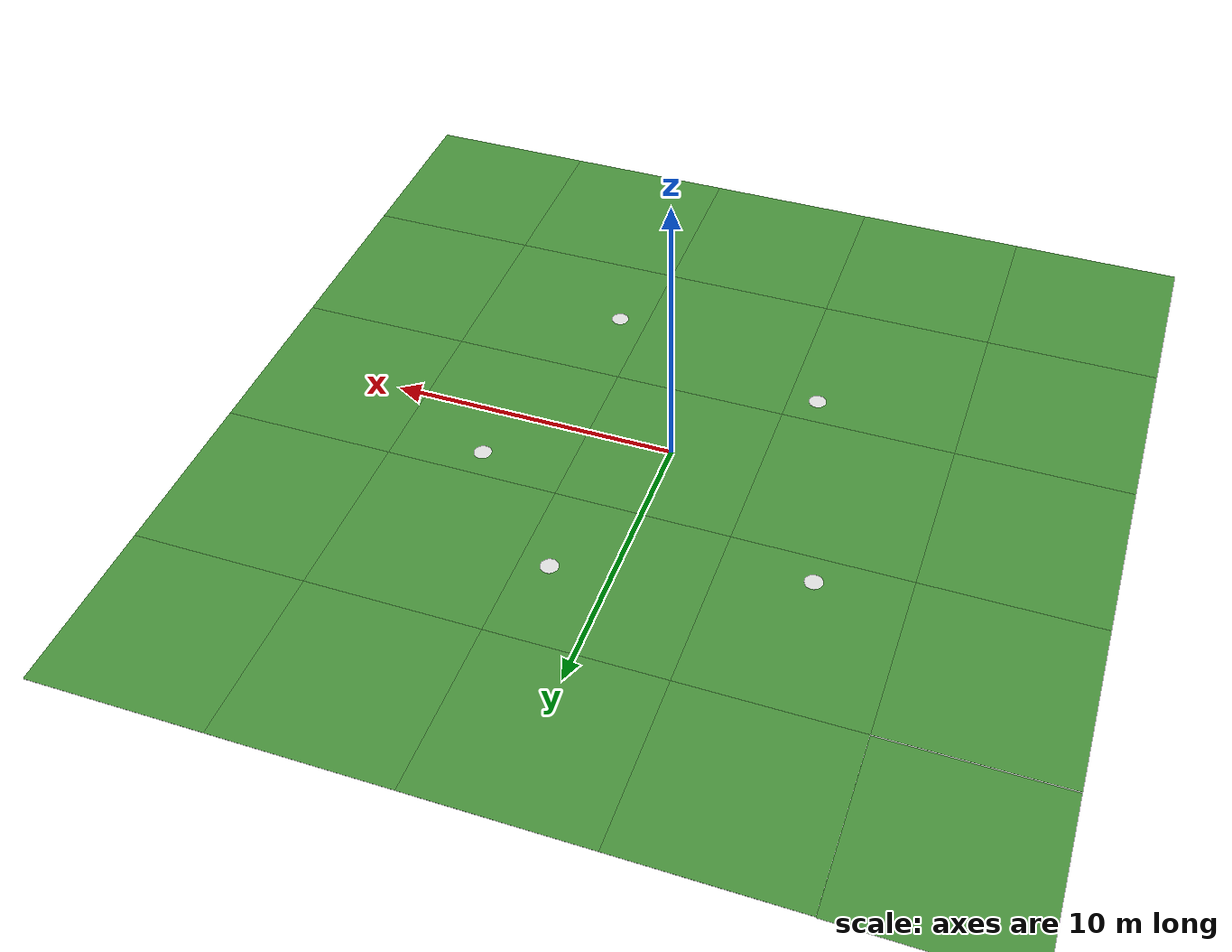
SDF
<?xml version="1.0"?>

<sdf version="1.6">
	<world name="default">
		<include>
			<uri>model://sun</uri>
			<pose>0 0 250  0 0 0</pose>
		</include>

		<include>
			<uri>model://grass_plane</uri>
		</include>

		<include>
			<uri>model://pothole</uri>
			<name>pothole0</name>
			<pose>-4 -4 0  0 0 0</pose>

		</include>

		<include>
			<uri>model://pothole</uri>
			<name>pothole1</name>
			<pose>6 2 0  0 0 0</pose>
		</include>

		<include>
			<uri>model://pothole</uri>
			<name>pothole2</name>
			<pose>2 6 0  0 0 0</pose>
		</include>

		<include>
			<uri>model://pothole</uri>
			<name>pothole3</name>
			<pose>-6 4 0  0 0 0</pose>
		</include>

		<include>
			<uri>model://pothole</uri>
			<name>pothole4</name>
			<pose>4 -6 0  0 0 0</pose>
		</include>

	</world>
</sdf>

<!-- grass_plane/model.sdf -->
<sdf version='1.4'>
	<model name='grass_plane'>
		<static>true</static>
		<link name='link'>
			<collision name='collision'>
				<geometry>
					<plane>
						<normal>0 0 1</normal>
						<size>30 30</size>
					</plane>
				</geometry>
				<surface>
					<friction>
						<ode>
							<mu>0.5</mu>
							<mu2>.5</mu2>
						</ode>
					</friction>
				</surface>
			</collision>

			<visual name='visual00'>
				<pose>-12 12 0 0 0 0</pose>

				<cast_shadows>false</cast_shadows>
				<geometry>
					<plane>
						<normal>0 0 1</normal>
						<size>6 6</size>
					</plane>
				</geometry>
				<material>
					<script>
						<uri>model://grass_plane/materials/scripts</uri>
						<uri>model://grass_plane/materials/textures</uri>
						<name>vrc/grass</name>
					</script>
				</material>
			</visual>

			<visual name='visual01'>
				<pose>-6 12 0 0 0 0</pose>

				<cast_shadows>false</cast_shadows>
				<geometry>
					<plane>
						<normal>0 0 1</normal>
						<size>6 6</size>
					</plane>
				</geometry>
				<material>
					<script>
						<uri>model://grass_plane/materials/scripts</uri>
						<uri>model://grass_plane/materials/textures</uri>
						<name>vrc/grass</name>
					</script>
				</material>
			</visual>

			<visual name='visual02'>
				<pose>0 12 0 0 0 0</pose>

				<cast_shadows>false</cast_shadows>
				<geometry>
					<plane>
						<normal>0 0 1</normal>
						<size>6 6</size>
					</plane>
				</geometry>
				<material>
					<script>
						<uri>model://grass_plane/materials/scripts</uri>
						<uri>model://grass_plane/materials/textures</uri>
						<name>vrc/grass</name>
					</script>
				</material>
			</visual>

			<visual name='visual03'>
				<pose>6 12 0 0 0 0</pose>

				<cast_shadows>false</cast_shadows>
				<geometry>
					<plane>
						<normal>0 0 1</normal>
						<size>6 6</size>
					</plane>
				</geometry>
				<material>
					<script>
						<uri>model://grass_plane/materials/scripts</uri>
						<uri>model://grass_plane/materials/textures</uri>
						<name>vrc/grass</name>
					</script>
				</material>
			</visual>

			<visual name='visual04'>
				<pose>12 12 0 0 0 0</pose>

				<cast_shadows>false</cast_shadows>
				<geometry>
					<plane>
						<normal>0 0 1</normal>
						<size>6 6</size>
					</plane>
				</geometry>
				<material>
					<script>
						<uri>model://grass_plane/materials/scripts</uri>
						<uri>model://grass_plane/materials/textures</uri>
						<name>vrc/grass</name>
					</script>
				</material>
			</visual>

			<visual name='visual10'>
				<pose>-12 6 0 0 0 0</pose>

				<cast_shadows>false</cast_shadows>
				<geometry>
					<plane>
						<normal>0 0 1</normal>
						<size>6 6</size>
					</plane>
				</geometry>
				<material>
					<script>
						<uri>model://grass_plane/materials/scripts</uri>
						<uri>model://grass_plane/materials/textures</uri>
						<name>vrc/grass</name>
					</script>
				</material>
			</visual>

			<visual name='visual11'>
				<pose>-6 6 0 0 0 0</pose>

				<cast_shadows>false</cast_shadows>
				<geometry>
					<plane>
						<normal>0 0 1</normal>
						<size>6 6</size>
					</plane>
				</geometry>
				<material>
					<script>
						<uri>model://grass_plane/materials/scripts</uri>
						<uri>model://grass_plane/materials/textures</uri>
						<name>vrc/grass</name>
					</script>
				</material>
			</visual>

			<visual name='visual12'>
				<pose>0 6 0 0 0 0</pose>

				<cast_shadows>false</cast_shadows>
				<geometry>
					<plane>
						<normal>0 0 1</normal>
						<size>6 6</size>
					</plane>
				</geometry>
				<material>
					<script>
						<uri>model://grass_plane/materials/scripts</uri>
						<uri>model://grass_plane/materials/textures</uri>
						<name>vrc/grass</name>
					</script>
				</material>
			</visual>

			<visual name='visual13'>
				<pose>6 6 0 0 0 0</pose>

				<cast_shadows>false</cast_shadows>
				<geometry>
					<plane>
						<normal>0 0 1</normal>
						<size>6 6</size>
					</plane>
				</geometry>
				<material>
					<script>
						<uri>model://grass_plane/materials/scripts</uri>
						<uri>model://grass_plane/materials/textures</uri>
						<name>vrc/grass</name>
					</script>
				</material>
			</visual>

			<visual name='visual14'>
				<pose>12 6 0 0 0 0</pose>

				<cast_shadows>false</cast_shadows>
				<geometry>
					<plane>
						<normal>0 0 1</normal>
						<size>6 6</size>
					</plane>
				</geometry>
				<material>
					<script>
						<uri>model://grass_plane/materials/scripts</uri>
						<uri>model://grass_plane/materials/textures</uri>
						<name>vrc/grass</name>
					</script>
				</material>
			</visual>

			<visual name='visual20'>
				<pose>-12 0 0 0 0 0</pose>

				<cast_shadows>false</cast_shadows>
				<geometry>
					<plane>
						<normal>0 0 1</normal>
						<size>6 6</size>
					</plane>
				</geometry>
				<material>
					<script>
						<uri>model://grass_plane/materials/scripts</uri>
						<uri>model://grass_plane/materials/textures</uri>
						<name>vrc/grass</name>
					</script>
				</material>
			</visual>

			<visual name='visual21'>
				<pose>-6 0 0 0 0 0</pose>

				<cast_shadows>false</cast_shadows>
				<geometry>
					<plane>
						<normal>0 0 1</normal>
						<size>6 6</size>
					</plane>
				</geometry>
				<material>
					<script>
						<uri>model://grass_plane/materials/scripts</uri>
						<uri>model://grass_plane/materials/textures</uri>
						<name>vrc/grass</name>
					</script>
				</material>
			</visual>

			<visual name='visual22'>
				<pose>0 0 0 0 0 0</pose>

				<cast_shadows>false</cast_shadows>
				<geometry>
					<plane>
						<normal>0 0 1</normal>
						<size>6 6</size>
					</plane>
				</geometry>
				<material>
					<script>
						<uri>model://grass_plane/materials/scripts</uri>
						<uri>model://grass_plane/materials/textures</uri>
						<name>vrc/grass</name>
					</script>
				</material>
			</visual>

			<visual name='visual23'>
				<pose>6 0 0 0 0 0</pose>

				<cast_shadows>false</cast_shadows>
				<geometry>
					<plane>
						<normal>0 0 1</normal>
						<size>6 6</size>
					</plane>
				</geometry>
				<material>
					<script>
						<uri>model://grass_plane/materials/scripts</uri>
						<uri>model://grass_plane/materials/textures</uri>
						<name>vrc/grass</name>
					</script>
				</material>
			</visual>

			<visual name='visual24'>
				<pose>12 0 0 0 0 0</pose>

				<cast_shadows>false</cast_shadows>
				<geometry>
					<plane>
						<normal>0 0 1</normal>
						<size>6 6</size>
					</plane>
				</geometry>
				<material>
					<script>
						<uri>model://grass_plane/materials/scripts</uri>
						<uri>model://grass_plane/materials/textures</uri>
						<name>vrc/grass</name>
					</script>
				</material>
			</visual>

			<visual name='visual30'>
				<pose>-12 -6 0 0 0 0</pose>

				<cast_shadows>false</cast_shadows>
				<geometry>
					<plane>
						<normal>0 0 1</normal>
						<size>6 6</size>
					</plane>
				</geometry>
				<material>
					<script>
						<uri>model://grass_plane/materials/scripts</uri>
						<uri>model://grass_plane/materials/textures</uri>
						<name>vrc/grass</name>
					</script>
				</material>
			</visual>

			<visual name='visual31'>
				<pose>-6 -6 0 0 0 0</pose>

				<cast_shadows>false</cast_shadows>
				<geometry>
					<plane>
						<normal>0 0 1</normal>
						<size>6 6</size>
					</plane>
				</geometry>
				<material>
					<script>
						<uri>model://grass_plane/materials/scripts</uri>
						<uri>model://grass_plane/materials/textures</uri>
						<name>vrc/grass</name>
					</script>
				</material>
			</visual>

			<visual name='visual32'>
				<pose>0 -6 0 0 0 0</pose>

				<cast_shadows>false</cast_shadows>
				<geometry>
					<plane>
						<normal>0 0 1</normal>
						<size>6 6</size>
					</plane>
				</geometry>
				<material>
					<script>
						<uri>model://grass_plane/materials/scripts</uri>
						<uri>model://grass_plane/materials/textures</uri>
						<name>vrc/grass</name>
					</script>
				</material>
			</visual>

			<visual name='visual33'>
				<pose>6 -6 0 0 0 0</pose>

				<cast_shadows>false</cast_shadows>
				<geometry>
					<plane>
						<normal>0 0 1</normal>
						<size>6 6</size>
					</plane>
				</geometry>
				<material>
					<script>
						<uri>model://grass_plane/materials/scripts</uri>
						<uri>model://grass_plane/materials/textures</uri>
						<name>vrc/grass</name>
					</script>
				</material>
			</visual>

			<visual name='visual34'>
				<pose>12 -6 0 0 0 0</pose>

				<cast_shadows>false</cast_shadows>
				<geometry>
					<plane>
						<normal>0 0 1</normal>
						<size>6 6</size>
					</plane>
				</geometry>
				<material>
					<script>
						<uri>model://grass_plane/materials/scripts</uri>
						<uri>model://grass_plane/materials/textures</uri>
						<name>vrc/grass</name>
					</script>
				</material>
			</visual>

			<visual name='visual40'>
				<pose>-12 -12 0 0 0 0</pose>

				<cast_shadows>false</cast_shadows>
				<geometry>
					<plane>
						<normal>0 0 1</normal>
						<size>6 6</size>
					</plane>
				</geometry>
				<material>
					<script>
						<uri>model://grass_plane/materials/scripts</uri>
						<uri>model://grass_plane/materials/textures</uri>
						<name>vrc/grass</name>
					</script>
				</material>
			</visual>

			<visual name='visual41'>
				<pose>-6 -12 0 0 0 0</pose>

				<cast_shadows>false</cast_shadows>
				<geometry>
					<plane>
						<normal>0 0 1</normal>
						<size>6 6</size>
					</plane>
				</geometry>
				<material>
					<script>
						<uri>model://grass_plane/materials/scripts</uri>
						<uri>model://grass_plane/materials/textures</uri>
						<name>vrc/grass</name>
					</script>
				</material>
			</visual>

			<visual name='visual42'>
				<pose>0 -12 0 0 0 0</pose>

				<cast_shadows>false</cast_shadows>
				<geometry>
					<plane>
						<normal>0 0 1</normal>
						<size>6 6</size>
					</plane>
				</geometry>
				<material>
					<script>
						<uri>model://grass_plane/materials/scripts</uri>
						<uri>model://grass_plane/materials/textures</uri>
						<name>vrc/grass</name>
					</script>
				</material>
			</visual>

			<visual name='visual43'>
				<pose>6 -12 0 0 0 0</pose>

				<cast_shadows>false</cast_shadows>
				<geometry>
					<plane>
						<normal>0 0 1</normal>
						<size>6 6</size>
					</plane>
				</geometry>
				<material>
					<script>
						<uri>model://grass_plane/materials/scripts</uri>
						<uri>model://grass_plane/materials/textures</uri>
						<name>vrc/grass</name>
					</script>
				</material>
			</visual>

			<visual name='visual44'>
				<pose>12 -12 0 0 0 0</pose>

				<cast_shadows>false</cast_shadows>
				<geometry>
					<plane>
						<normal>0 0 1</normal>
						<size>6 6</size>
					</plane>
				</geometry>
				<material>
					<script>
						<uri>model://grass_plane/materials/scripts</uri>
						<uri>model://grass_plane/materials/textures</uri>
						<name>vrc/grass</name>
					</script>
				</material>
			</visual>

		</link>
	</model>
</sdf>

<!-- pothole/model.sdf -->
<sdf version='1.7'>
	<model name='pothole'>
		<link name='link'>
			<inertial>
				<mass>1</mass>
				<inertia>
					<ixx>0</ixx>
					<ixy>0</ixy>
					<ixz>0</ixz>
					<iyy>0</iyy>
					<iyz>0</iyz>
					<izz>0</izz>
				</inertia>
				<pose>0 0 0  0 0 0</pose>
			</inertial>
			<self_collide>0</self_collide>
			<enable_wind>0</enable_wind>
			<kinematic>0</kinematic>
			<pose>0 0 0 0 0 0</pose>
			<gravity>1</gravity>
			<visual name='visual'>
				<geometry>
					<cylinder>
						<radius>0.3048</radius>
						<!-- radius has to be 1 ft = 0.3048 m -->
						<length>0.01</length>
					</cylinder>
				</geometry>
				<material>
					<script>
						<name>Gazebo/WhiteGlow</name>
						<uri>file://media/materials/scripts/gazebo.material</uri>
					</script>
					<shader type='pixel'>
						<normal_map>__default__</normal_map>
					</shader>
				</material>
				<pose>0 0 0 0 0 0</pose>
				<transparency>0</transparency>
				<cast_shadows>1</cast_shadows>
			</visual>
		</link>
		<static>1</static>
		<allow_auto_disable>1</allow_auto_disable>
	</model>
</sdf>
